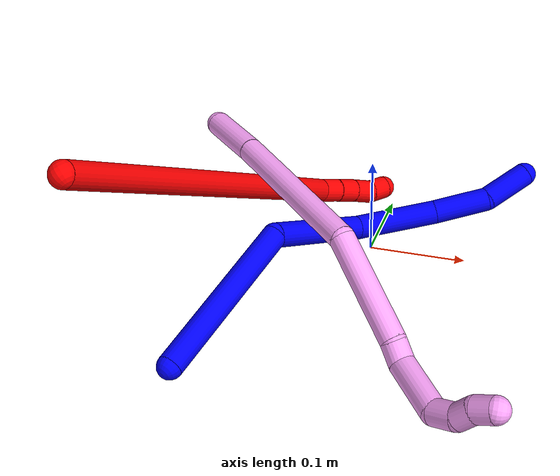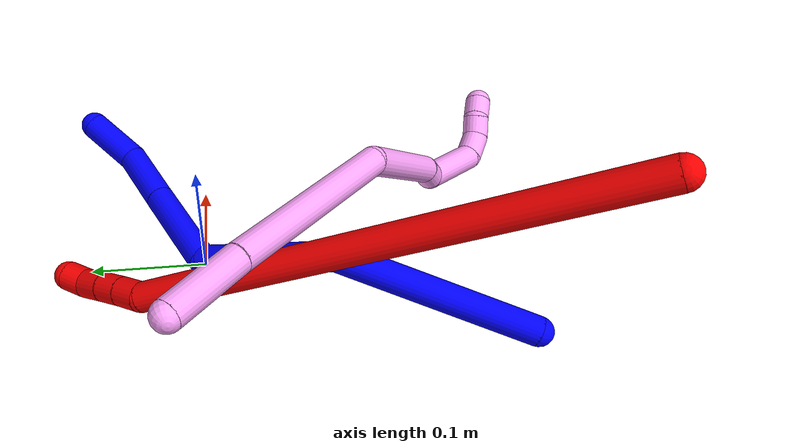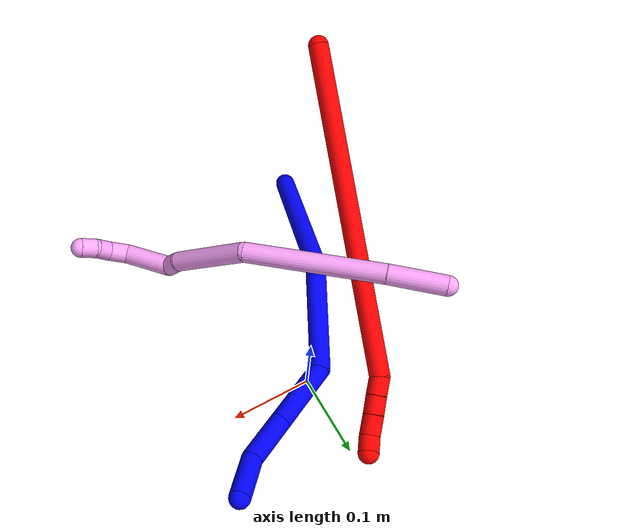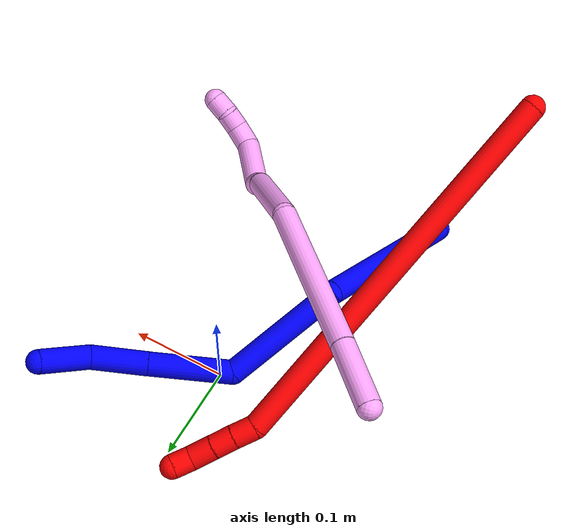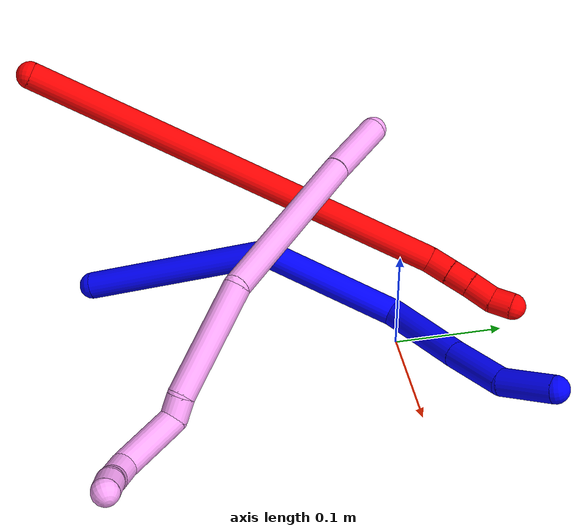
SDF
<sdf version="1.7">
 <world name="default">
  <model name="photoneo_s_sensor">
   <static>1</static>
   <pose>0 0 2 1.57079 1.57079 3.14159</pose>
   <link name="link">
    <inertial><mass>0.1</mass></inertial>
    <sensor name="sensor" type="depth">
     <update_rate>30</update_rate>
     <camera>
      <horizontal_fov>1.22</horizontal_fov>
      <image><width>1920</width><height>1200</height><format>B8G8R8</format></image>
      <clip><near>0.1</near><far>4</far></clip>
      <depth_camera><output>points</output></depth_camera>
     </camera>
     <plugin name="camera_plugin" filename="libgazebo_ros_depth_camera.so">
      <baseline>0.2</baseline>
      <alwaysOn>1</alwaysOn>
      <updateRate>0.0</updateRate>
      <cameraName>camera_ir</cameraName>
      <imageTopicName>/camera/color/image_raw</imageTopicName>
      <cameraInfoTopicName>/camera/color/camera_info</cameraInfoTopicName>
      <depthImageTopicName>/camera/depth/image_raw</depthImageTopicName>
      <depthImageCameraInfoTopicName>/camera/depth/camera_info</depthImageCameraInfoTopicName>
      <pointCloudTopicName>/camera/depth/points</pointCloudTopicName>
      <frameName>fr_optical</frameName>
      <pointCloudCutoff>0.1</pointCloudCutoff>
      <pointCloudCutoffMax>2.0</pointCloudCutoffMax>
      <distortionK1>0</distortionK1>
      <distortionK2>0</distortionK2>
      <distortionK3>0</distortionK3>
      <distortionT1>0</distortionT1>
      <distortionT2>0</distortionT2>
      <CxPrime>0</CxPrime>
      <Cx>0</Cx>
      <Cy>0</Cy>
      <focalLength>0</focalLength>
      <hackBaseline>0</hackBaseline>
     </plugin>
    </sensor>
   </link>
  </model>
  <model name="bin">
   <static>1</static>
   <link name="bottom">
    <collision name="collision-bottom">
     <pose>0 0 -0.01 0 -0 0</pose>
     <geometry><box><size>0.8 0.6 0.02</size></box></geometry>
     <surface>
      <friction><ode><mu>100</mu><mu2>100</mu2></ode></friction>
      <contact><collide_bitmask>65535</collide_bitmask></contact>
     </surface>
    </collision>
   </link>
   <link name="west_wall">
    <collision name="collision-west_wall">
     <pose>-0.41 0 0.1 0 -0 0</pose>
     <geometry><box><size>0.02 0.6 0.2</size></box></geometry>
     <surface>
      <friction><ode><mu>100</mu><mu2>100</mu2></ode></friction>
      <contact><collide_bitmask>65535</collide_bitmask></contact>
     </surface>
    </collision>
   </link>
   <link name="east_wall">
    <collision name="collision-east_wall">
     <pose>0.41 0 0.1 0 -0 0</pose>
     <geometry><box><size>0.02 0.6 0.2</size></box></geometry>
     <surface>
      <friction><ode><mu>100</mu><mu2>100</mu2></ode></friction>
      <contact><collide_bitmask>65535</collide_bitmask></contact>
     </surface>
    </collision>
   </link>
   <link name="south_wall">
    <collision name="collision-south_wall">
     <pose>0 -0.31 0.1 0 -0 0</pose>
     <geometry><box><size>0.8 0.02 0.2</size></box></geometry>
     <surface>
      <friction><ode><mu>100</mu><mu2>100</mu2></ode></friction>
      <contact><collide_bitmask>65535</collide_bitmask></contact>
     </surface>
    </collision>
   </link>
   <link name="north_wall">
    <collision name="collision-north_wall">
     <pose>0 0.31 0.1 0 -0 0</pose>
     <geometry><box><size>0.8 0.02 0.2</size></box></geometry>
     <surface>
      <friction><ode><mu>100</mu><mu2>100</mu2></ode></friction>
      <contact><collide_bitmask>65535</collide_bitmask></contact>
     </surface>
    </collision>
   </link>
  </model>
  <model name="1">
   <static>0</static>
   <link name="1">
    <collision name="collision-cylinder-e_1_1_4">
     <pose>-0.006406 -0.001657 -0.086698 3.12249 -0.073742 -2.63479</pose>
     <geometry><cylinder><radius>0.0125</radius><length>0.1739</length></cylinder></geometry>
     <surface>
      <friction><ode><mu>1.16</mu><mu2>1.16</mu2><slip1>0</slip1><slip2>0</slip2></ode></friction>
      <contact><ode><kp>1e+06</kp><kd>1</kd><max_vel>0</max_vel><min_depth>0.001</min_depth></ode></contact>
     </surface>
    </collision>
    <visual name="visual-cylinder-e_1_1_4">
     <pose>-0.006406 -0.001657 -0.086698 3.12249 -0.073742 -2.63479</pose>
     <geometry><cylinder><radius>0.0125</radius><length>0.1739</length></cylinder></geometry>
     <material><ambient>0 0 1 1</ambient></material>
    </visual>
    <collision name="collision-cylinder-e_2_4_5">
     <pose>0.017738 -0.025774 -0.225757 2.73637 0.492173 1.77051</pose>
     <geometry><cylinder><radius>0.0125</radius><length>0.129299</length></cylinder></geometry>
     <surface>
      <friction><ode><mu>1.16</mu><mu2>1.16</mu2><slip1>0</slip1><slip2>0</slip2></ode></friction>
      <contact><ode><kp>1e+06</kp><kd>1</kd><max_vel>0</max_vel><min_depth>0.001</min_depth></ode></contact>
     </surface>
    </collision>
    <visual name="visual-cylinder-e_2_4_5">
     <pose>0.017738 -0.025774 -0.225757 2.73637 0.492173 1.77051</pose>
     <geometry><cylinder><radius>0.0125</radius><length>0.129299</length></cylinder></geometry>
     <material><ambient>0 0 1 1</ambient></material>
    </visual>
    <collision name="collision-cylinder-e_3_5_6">
     <pose>0.071607 -0.030675 -0.30954 -2.63195 0.574873 -1.697</pose>
     <geometry><cylinder><radius>0.0125</radius><length>0.085779</length></cylinder></geometry>
     <surface>
      <friction><ode><mu>1.16</mu><mu2>1.16</mu2><slip1>0</slip1><slip2>0</slip2></ode></friction>
      <contact><ode><kp>1e+06</kp><kd>1</kd><max_vel>0</max_vel><min_depth>0.001</min_depth></ode></contact>
     </surface>
    </collision>
    <visual name="visual-cylinder-e_3_5_6">
     <pose>0.071607 -0.030675 -0.30954 -2.63195 0.574873 -1.697</pose>
     <geometry><cylinder><radius>0.0125</radius><length>0.085779</length></cylinder></geometry>
     <material><ambient>0 0 1 1</ambient></material>
    </visual>
    <collision name="collision-cylinder-e_4_6_7">
     <pose>0.10968 -0.000365 -0.362795 -2.61311 0.528188 -1.57021</pose>
     <geometry><cylinder><radius>0.0125</radius><length>0.058546</length></cylinder></geometry>
     <surface>
      <friction><ode><mu>1.16</mu><mu2>1.16</mu2><slip1>0</slip1><slip2>0</slip2></ode></friction>
      <contact><ode><kp>1e+06</kp><kd>1</kd><max_vel>0</max_vel><min_depth>0.001</min_depth></ode></contact>
     </surface>
    </collision>
    <visual name="visual-cylinder-e_4_6_7">
     <pose>0.10968 -0.000365 -0.362795 -2.61311 0.528188 -1.57021</pose>
     <geometry><cylinder><radius>0.0125</radius><length>0.058546</length></cylinder></geometry>
     <material><ambient>0 0 1 1</ambient></material>
    </visual>
    <collision name="collision-cylinder-e_5_7_2">
     <pose>0.130077 0.020381 -0.408974 -2.8242 0.216805 -1.19434</pose>
     <geometry><cylinder><radius>0.0125</radius><length>0.052477</length></cylinder></geometry>
     <surface>
      <friction><ode><mu>1.16</mu><mu2>1.16</mu2><slip1>0</slip1><slip2>0</slip2></ode></friction>
      <contact><ode><kp>1e+06</kp><kd>1</kd><max_vel>0</max_vel><min_depth>0.001</min_depth></ode></contact>
     </surface>
    </collision>
    <visual name="visual-cylinder-e_5_7_2">
     <pose>0.130077 0.020381 -0.408974 -2.8242 0.216805 -1.19434</pose>
     <geometry><cylinder><radius>0.0125</radius><length>0.052477</length></cylinder></geometry>
     <material><ambient>0 0 1 1</ambient></material>
    </visual>
    <collision name="collision-sphere-2">
     <pose>0.135721 0.028378 -0.433318 0 -0 0</pose>
     <geometry><sphere><radius>0.0125</radius></sphere></geometry>
     <surface>
      <friction><ode><mu>1.16</mu><mu2>1.16</mu2><slip1>0</slip1><slip2>0</slip2></ode></friction>
      <contact><ode><kp>1e+06</kp><kd>1</kd><max_vel>0</max_vel><min_depth>0.001</min_depth></ode></contact>
     </surface>
    </collision>
    <visual name="visual-sphere-2">
     <pose>0.135721 0.028378 -0.433318 0 -0 0</pose>
     <geometry><sphere><radius>0.0125</radius></sphere></geometry>
     <material><ambient>0 0 1 1</ambient></material>
    </visual>
    <collision name="collision-sphere-7">
     <pose>0.124433 0.012383 -0.38463 0 -0 0</pose>
     <geometry><sphere><radius>0.0125</radius></sphere></geometry>
     <surface>
      <friction><ode><mu>1.16</mu><mu2>1.16</mu2><slip1>0</slip1><slip2>0</slip2></ode></friction>
      <contact><ode><kp>1e+06</kp><kd>1</kd><max_vel>0</max_vel><min_depth>0.001</min_depth></ode></contact>
     </surface>
    </collision>
    <visual name="visual-sphere-7">
     <pose>0.124433 0.012383 -0.38463 0 -0 0</pose>
     <geometry><sphere><radius>0.0125</radius></sphere></geometry>
     <material><ambient>0 0 1 1</ambient></material>
    </visual>
    <collision name="collision-sphere-6">
     <pose>0.094927 -0.013114 -0.340961 0 -0 0</pose>
     <geometry><sphere><radius>0.0125</radius></sphere></geometry>
     <surface>
      <friction><ode><mu>1.16</mu><mu2>1.16</mu2><slip1>0</slip1><slip2>0</slip2></ode></friction>
      <contact><ode><kp>1e+06</kp><kd>1</kd><max_vel>0</max_vel><min_depth>0.001</min_depth></ode></contact>
     </surface>
    </collision>
    <visual name="visual-sphere-6">
     <pose>0.094927 -0.013114 -0.340961 0 -0 0</pose>
     <geometry><sphere><radius>0.0125</radius></sphere></geometry>
     <material><ambient>0 0 1 1</ambient></material>
    </visual>
    <collision name="collision-sphere-5">
     <pose>0.048287 -0.048236 -0.278119 0 -0 0</pose>
     <geometry><sphere><radius>0.0125</radius></sphere></geometry>
     <surface>
      <friction><ode><mu>1.16</mu><mu2>1.16</mu2><slip1>0</slip1><slip2>0</slip2></ode></friction>
      <contact><ode><kp>1e+06</kp><kd>1</kd><max_vel>0</max_vel><min_depth>0.001</min_depth></ode></contact>
     </surface>
    </collision>
    <visual name="visual-sphere-5">
     <pose>0.048287 -0.048236 -0.278119 0 -0 0</pose>
     <geometry><sphere><radius>0.0125</radius></sphere></geometry>
     <material><ambient>0 0 1 1</ambient></material>
    </visual>
    <collision name="collision-sphere-1">
     <geometry><sphere><radius>0.0125</radius></sphere></geometry>
     <surface>
      <friction><ode><mu>1.16</mu><mu2>1.16</mu2><slip1>0</slip1><slip2>0</slip2></ode></friction>
      <contact><ode><kp>1e+06</kp><kd>1</kd><max_vel>0</max_vel><min_depth>0.001</min_depth></ode></contact>
     </surface>
    </collision>
    <visual name="visual-sphere-1">
     <geometry><sphere><radius>0.0125</radius></sphere></geometry>
     <material><ambient>0 0 1 1</ambient></material>
    </visual>
    <collision name="collision-sphere-4">
     <pose>-0.012812 -0.003313 -0.173395 0 -0 0</pose>
     <geometry><sphere><radius>0.0125</radius></sphere></geometry>
     <surface>
      <friction><ode><mu>1.16</mu><mu2>1.16</mu2><slip1>0</slip1><slip2>0</slip2></ode></friction>
      <contact><ode><kp>1e+06</kp><kd>1</kd><max_vel>0</max_vel><min_depth>0.001</min_depth></ode></contact>
     </surface>
    </collision>
    <visual name="visual-sphere-4">
     <pose>-0.012812 -0.003313 -0.173395 0 -0 0</pose>
     <geometry><sphere><radius>0.0125</radius></sphere></geometry>
     <material><ambient>0 0 1 1</ambient></material>
    </visual>
    <inertial>
     <pose>0.041138 -0.010408 -0.227041 0 -0 0</pose>
     <mass>0.5</mass>
     <inertia>
      <ixx>-0.000542</ixx>
      <ixy>0</ixy>
      <ixz>0</ixz>
      <iyy>0.00035</iyy>
      <iyz>0</iyz>
      <izz>-9.4e-05</izz>
     </inertia>
    </inertial>
   </link>
   <pose>-0.118692 -0.266383 0.011961 1.94226 0.731548 -0.105381</pose>
  </model>
  <model name="2">
   <static>0</static>
   <link name="2">
    <collision name="collision-cylinder-e_1_1_4">
     <pose>-0.008115 0.202615 -0.026155 -1.69918 -0.039702 0.045155</pose>
     <geometry><cylinder><radius>0.0125</radius><length>0.408915</length></cylinder></geometry>
     <surface>
      <friction><ode><mu>1.16</mu><mu2>1.16</mu2><slip1>0</slip1><slip2>0</slip2></ode></friction>
      <contact><ode><kp>1e+06</kp><kd>1</kd><max_vel>0</max_vel><min_depth>0.001</min_depth></ode></contact>
     </surface>
    </collision>
    <visual name="visual-cylinder-e_1_1_4">
     <pose>-0.008115 0.202615 -0.026155 -1.69918 -0.039702 0.045155</pose>
     <geometry><cylinder><radius>0.0125</radius><length>0.408915</length></cylinder></geometry>
     <material><ambient>1 0 0 1</ambient></material>
    </visual>
    <collision name="collision-cylinder-e_2_4_5">
     <pose>-0.01247 0.415657 -0.056005 -1.91132 0.327689 -0.459683</pose>
     <geometry><cylinder><radius>0.0125</radius><length>0.023366</length></cylinder></geometry>
     <surface>
      <friction><ode><mu>1.16</mu><mu2>1.16</mu2><slip1>0</slip1><slip2>0</slip2></ode></friction>
      <contact><ode><kp>1e+06</kp><kd>1</kd><max_vel>0</max_vel><min_depth>0.001</min_depth></ode></contact>
     </surface>
    </collision>
    <visual name="visual-cylinder-e_2_4_5">
     <pose>-0.01247 0.415657 -0.056005 -1.91132 0.327689 -0.459683</pose>
     <geometry><cylinder><radius>0.0125</radius><length>0.023366</length></cylinder></geometry>
     <material><ambient>1 0 0 1</ambient></material>
    </visual>
    <collision name="collision-cylinder-e_3_5_6">
     <pose>-0.005477 0.436168 -0.063164 -1.90171 0.294413 -0.409628</pose>
     <geometry><cylinder><radius>0.0125</radius><length>0.022285</length></cylinder></geometry>
     <surface>
      <friction><ode><mu>1.16</mu><mu2>1.16</mu2><slip1>0</slip1><slip2>0</slip2></ode></friction>
      <contact><ode><kp>1e+06</kp><kd>1</kd><max_vel>0</max_vel><min_depth>0.001</min_depth></ode></contact>
     </surface>
    </collision>
    <visual name="visual-cylinder-e_3_5_6">
     <pose>-0.005477 0.436168 -0.063164 -1.90171 0.294413 -0.409628</pose>
     <geometry><cylinder><radius>0.0125</radius><length>0.022285</length></cylinder></geometry>
     <material><ambient>1 0 0 1</ambient></material>
    </visual>
    <collision name="collision-cylinder-e_4_6_7">
     <pose>0.001099 0.457506 -0.070998 -1.94121 0.270066 -0.391911</pose>
     <geometry><cylinder><radius>0.0125</radius><length>0.025051</length></cylinder></geometry>
     <surface>
      <friction><ode><mu>1.16</mu><mu2>1.16</mu2><slip1>0</slip1><slip2>0</slip2></ode></friction>
      <contact><ode><kp>1e+06</kp><kd>1</kd><max_vel>0</max_vel><min_depth>0.001</min_depth></ode></contact>
     </surface>
    </collision>
    <visual name="visual-cylinder-e_4_6_7">
     <pose>0.001099 0.457506 -0.070998 -1.94121 0.270066 -0.391911</pose>
     <geometry><cylinder><radius>0.0125</radius><length>0.025051</length></cylinder></geometry>
     <material><ambient>1 0 0 1</ambient></material>
    </visual>
    <collision name="collision-cylinder-e_5_7_2">
     <pose>0.009047 0.477794 -0.076368 -1.68101 0.469054 -0.521496</pose>
     <geometry><cylinder><radius>0.0125</radius><length>0.020381</length></cylinder></geometry>
     <surface>
      <friction><ode><mu>1.16</mu><mu2>1.16</mu2><slip1>0</slip1><slip2>0</slip2></ode></friction>
      <contact><ode><kp>1e+06</kp><kd>1</kd><max_vel>0</max_vel><min_depth>0.001</min_depth></ode></contact>
     </surface>
    </collision>
    <visual name="visual-cylinder-e_5_7_2">
     <pose>0.009047 0.477794 -0.076368 -1.68101 0.469054 -0.521496</pose>
     <geometry><cylinder><radius>0.0125</radius><length>0.020381</length></cylinder></geometry>
     <material><ambient>1 0 0 1</ambient></material>
    </visual>
    <collision name="collision-sphere-2">
     <pose>0.013654 0.486829 -0.077368 0 -0 0</pose>
     <geometry><sphere><radius>0.0125</radius></sphere></geometry>
     <surface>
      <friction><ode><mu>1.16</mu><mu2>1.16</mu2><slip1>0</slip1><slip2>0</slip2></ode></friction>
      <contact><ode><kp>1e+06</kp><kd>1</kd><max_vel>0</max_vel><min_depth>0.001</min_depth></ode></contact>
     </surface>
    </collision>
    <visual name="visual-sphere-2">
     <pose>0.013654 0.486829 -0.077368 0 -0 0</pose>
     <geometry><sphere><radius>0.0125</radius></sphere></geometry>
     <material><ambient>1 0 0 1</ambient></material>
    </visual>
    <collision name="collision-sphere-7">
     <pose>0.00444 0.468759 -0.075368 0 -0 0</pose>
     <geometry><sphere><radius>0.0125</radius></sphere></geometry>
     <surface>
      <friction><ode><mu>1.16</mu><mu2>1.16</mu2><slip1>0</slip1><slip2>0</slip2></ode></friction>
      <contact><ode><kp>1e+06</kp><kd>1</kd><max_vel>0</max_vel><min_depth>0.001</min_depth></ode></contact>
     </surface>
    </collision>
    <visual name="visual-sphere-7">
     <pose>0.00444 0.468759 -0.075368 0 -0 0</pose>
     <geometry><sphere><radius>0.0125</radius></sphere></geometry>
     <material><ambient>1 0 0 1</ambient></material>
    </visual>
    <collision name="collision-sphere-6">
     <pose>-0.002243 0.446253 -0.066628 0 -0 0</pose>
     <geometry><sphere><radius>0.0125</radius></sphere></geometry>
     <surface>
      <friction><ode><mu>1.16</mu><mu2>1.16</mu2><slip1>0</slip1><slip2>0</slip2></ode></friction>
      <contact><ode><kp>1e+06</kp><kd>1</kd><max_vel>0</max_vel><min_depth>0.001</min_depth></ode></contact>
     </surface>
    </collision>
    <visual name="visual-sphere-6">
     <pose>-0.002243 0.446253 -0.066628 0 -0 0</pose>
     <geometry><sphere><radius>0.0125</radius></sphere></geometry>
     <material><ambient>1 0 0 1</ambient></material>
    </visual>
    <collision name="collision-sphere-5">
     <pose>-0.00871 0.426084 -0.059699 0 -0 0</pose>
     <geometry><sphere><radius>0.0125</radius></sphere></geometry>
     <surface>
      <friction><ode><mu>1.16</mu><mu2>1.16</mu2><slip1>0</slip1><slip2>0</slip2></ode></friction>
      <contact><ode><kp>1e+06</kp><kd>1</kd><max_vel>0</max_vel><min_depth>0.001</min_depth></ode></contact>
     </surface>
    </collision>
    <visual name="visual-sphere-5">
     <pose>-0.00871 0.426084 -0.059699 0 -0 0</pose>
     <geometry><sphere><radius>0.0125</radius></sphere></geometry>
     <material><ambient>1 0 0 1</ambient></material>
    </visual>
    <collision name="collision-sphere-1">
     <geometry><sphere><radius>0.0125</radius></sphere></geometry>
     <surface>
      <friction><ode><mu>1.16</mu><mu2>1.16</mu2><slip1>0</slip1><slip2>0</slip2></ode></friction>
      <contact><ode><kp>1e+06</kp><kd>1</kd><max_vel>0</max_vel><min_depth>0.001</min_depth></ode></contact>
     </surface>
    </collision>
    <visual name="visual-sphere-1">
     <geometry><sphere><radius>0.0125</radius></sphere></geometry>
     <material><ambient>1 0 0 1</ambient></material>
    </visual>
    <collision name="collision-sphere-4">
     <pose>-0.016231 0.405231 -0.052311 0 -0 0</pose>
     <geometry><sphere><radius>0.0125</radius></sphere></geometry>
     <surface>
      <friction><ode><mu>1.16</mu><mu2>1.16</mu2><slip1>0</slip1><slip2>0</slip2></ode></friction>
      <contact><ode><kp>1e+06</kp><kd>1</kd><max_vel>0</max_vel><min_depth>0.001</min_depth></ode></contact>
     </surface>
    </collision>
    <visual name="visual-sphere-4">
     <pose>-0.016231 0.405231 -0.052311 0 -0 0</pose>
     <geometry><sphere><radius>0.0125</radius></sphere></geometry>
     <material><ambient>1 0 0 1</ambient></material>
    </visual>
    <inertial>
     <pose>-0.00704 0.246969 -0.033493 0 -0 0</pose>
     <mass>0.5</mass>
     <inertia>
      <ixx>0.005966</ixx>
      <ixy>0</ixy>
      <ixz>0</ixz>
      <iyy>-0.000429</iyy>
      <iyz>0</iyz>
      <izz>-0.005451</izz>
     </inertia>
    </inertial>
   </link>
   <pose>-0.180203 -0.30241 0.214158 -0.475772 -0.757138 0.110261</pose>
  </model>
  <model name="4">
   <static>0</static>
   <link name="4">
    <collision name="collision-cylinder-e_1_1_4">
     <pose>0.022302 -0.014067 -0.023331 2.59901 0.685976 1.8181</pose>
     <geometry><cylinder><radius>0.0125</radius><length>0.070416</length></cylinder></geometry>
     <surface>
      <friction><ode><mu>1.16</mu><mu2>1.16</mu2><slip1>0</slip1><slip2>0</slip2></ode></friction>
      <contact><ode><kp>1e+06</kp><kd>1</kd><max_vel>0</max_vel><min_depth>0.001</min_depth></ode></contact>
     </surface>
    </collision>
    <visual name="visual-cylinder-e_1_1_4">
     <pose>0.022302 -0.014067 -0.023331 2.59901 0.685976 1.8181</pose>
     <geometry><cylinder><radius>0.0125</radius><length>0.070416</length></cylinder></geometry>
     <material><ambient>1 0.65098 0.996078 1</ambient></material>
    </visual>
    <collision name="collision-cylinder-e_2_4_5">
     <pose>0.095605 -0.06739 -0.104704 2.54694 0.629179 1.63088</pose>
     <geometry><cylinder><radius>0.0125</radius><length>0.173331</length></cylinder></geometry>
     <surface>
      <friction><ode><mu>1.16</mu><mu2>1.16</mu2><slip1>0</slip1><slip2>0</slip2></ode></friction>
      <contact><ode><kp>1e+06</kp><kd>1</kd><max_vel>0</max_vel><min_depth>0.001</min_depth></ode></contact>
     </surface>
    </collision>
    <visual name="visual-cylinder-e_2_4_5">
     <pose>0.095605 -0.06739 -0.104704 2.54694 0.629179 1.63088</pose>
     <geometry><cylinder><radius>0.0125</radius><length>0.173331</length></cylinder></geometry>
     <material><ambient>1 0.65098 0.996078 1</ambient></material>
    </visual>
    <collision name="collision-cylinder-e_3_5_6">
     <pose>0.157883 -0.148048 -0.194835 2.23012 0.21206 0.427634</pose>
     <geometry><cylinder><radius>0.0125</radius><length>0.107165</length></cylinder></geometry>
     <surface>
      <friction><ode><mu>1.16</mu><mu2>1.16</mu2><slip1>0</slip1><slip2>0</slip2></ode></friction>
      <contact><ode><kp>1e+06</kp><kd>1</kd><max_vel>0</max_vel><min_depth>0.001</min_depth></ode></contact>
     </surface>
    </collision>
    <visual name="visual-cylinder-e_3_5_6">
     <pose>0.157883 -0.148048 -0.194835 2.23012 0.21206 0.427634</pose>
     <geometry><cylinder><radius>0.0125</radius><length>0.107165</length></cylinder></geometry>
     <material><ambient>1 0.65098 0.996078 1</ambient></material>
    </visual>
    <collision name="collision-cylinder-e_4_6_7">
     <pose>0.168614 -0.198442 -0.232579 2.13234 -0.051485 -0.093168</pose>
     <geometry><cylinder><radius>0.0125</radius><length>0.021272</length></cylinder></geometry>
     <surface>
      <friction><ode><mu>1.16</mu><mu2>1.16</mu2><slip1>0</slip1><slip2>0</slip2></ode></friction>
      <contact><ode><kp>1e+06</kp><kd>1</kd><max_vel>0</max_vel><min_depth>0.001</min_depth></ode></contact>
     </surface>
    </collision>
    <visual name="visual-cylinder-e_4_6_7">
     <pose>0.168614 -0.198442 -0.232579 2.13234 -0.051485 -0.093168</pose>
     <geometry><cylinder><radius>0.0125</radius><length>0.021272</length></cylinder></geometry>
     <material><ambient>1 0.65098 0.996078 1</ambient></material>
    </visual>
    <collision name="collision-cylinder-e_5_7_8">
     <pose>0.187696 -0.224321 -0.255217 2.35895 0.686584 1.42779</pose>
     <geometry><cylinder><radius>0.0125</radius><length>0.061932</length></cylinder></geometry>
     <surface>
      <friction><ode><mu>1.16</mu><mu2>1.16</mu2><slip1>0</slip1><slip2>0</slip2></ode></friction>
      <contact><ode><kp>1e+06</kp><kd>1</kd><max_vel>0</max_vel><min_depth>0.001</min_depth></ode></contact>
     </surface>
    </collision>
    <visual name="visual-cylinder-e_5_7_8">
     <pose>0.187696 -0.224321 -0.255217 2.35895 0.686584 1.42779</pose>
     <geometry><cylinder><radius>0.0125</radius><length>0.061932</length></cylinder></geometry>
     <material><ambient>1 0.65098 0.996078 1</ambient></material>
    </visual>
    <collision name="collision-cylinder-e_6_8_9">
     <pose>0.215929 -0.241099 -0.281737 -3.13002 0.73387 -3.11149</pose>
     <geometry><cylinder><radius>0.0125</radius><length>0.025693</length></cylinder></geometry>
     <surface>
      <friction><ode><mu>1.16</mu><mu2>1.16</mu2><slip1>0</slip1><slip2>0</slip2></ode></friction>
      <contact><ode><kp>1e+06</kp><kd>1</kd><max_vel>0</max_vel><min_depth>0.001</min_depth></ode></contact>
     </surface>
    </collision>
    <visual name="visual-cylinder-e_6_8_9">
     <pose>0.215929 -0.241099 -0.281737 -3.13002 0.73387 -3.11149</pose>
     <geometry><cylinder><radius>0.0125</radius><length>0.025693</length></cylinder></geometry>
     <material><ambient>1 0.65098 0.996078 1</ambient></material>
    </visual>
    <collision name="collision-cylinder-e_7_9_10">
     <pose>0.230816 -0.236076 -0.297371 -2.46319 0.676403 -1.56761</pose>
     <geometry><cylinder><radius>0.0125</radius><length>0.020075</length></cylinder></geometry>
     <surface>
      <friction><ode><mu>1.16</mu><mu2>1.16</mu2><slip1>0</slip1><slip2>0</slip2></ode></friction>
      <contact><ode><kp>1e+06</kp><kd>1</kd><max_vel>0</max_vel><min_depth>0.001</min_depth></ode></contact>
     </surface>
    </collision>
    <visual name="visual-cylinder-e_7_9_10">
     <pose>0.230816 -0.236076 -0.297371 -2.46319 0.676403 -1.56761</pose>
     <geometry><cylinder><radius>0.0125</radius><length>0.020075</length></cylinder></geometry>
     <material><ambient>1 0.65098 0.996078 1</ambient></material>
    </visual>
    <collision name="collision-cylinder-e_8_10_2">
     <pose>0.242838 -0.229468 -0.31155 -2.93484 0.607111 -2.50192</pose>
     <geometry><cylinder><radius>0.0125</radius><length>0.020115</length></cylinder></geometry>
     <surface>
      <friction><ode><mu>1.16</mu><mu2>1.16</mu2><slip1>0</slip1><slip2>0</slip2></ode></friction>
      <contact><ode><kp>1e+06</kp><kd>1</kd><max_vel>0</max_vel><min_depth>0.001</min_depth></ode></contact>
     </surface>
    </collision>
    <visual name="visual-cylinder-e_8_10_2">
     <pose>0.242838 -0.229468 -0.31155 -2.93484 0.607111 -2.50192</pose>
     <geometry><cylinder><radius>0.0125</radius><length>0.020115</length></cylinder></geometry>
     <material><ambient>1 0.65098 0.996078 1</ambient></material>
    </visual>
    <collision name="collision-sphere-2">
     <pose>0.248576 -0.227773 -0.319634 0 -0 0</pose>
     <geometry><sphere><radius>0.0125</radius></sphere></geometry>
     <surface>
      <friction><ode><mu>1.16</mu><mu2>1.16</mu2><slip1>0</slip1><slip2>0</slip2></ode></friction>
      <contact><ode><kp>1e+06</kp><kd>1</kd><max_vel>0</max_vel><min_depth>0.001</min_depth></ode></contact>
     </surface>
    </collision>
    <visual name="visual-sphere-2">
     <pose>0.248576 -0.227773 -0.319634 0 -0 0</pose>
     <geometry><sphere><radius>0.0125</radius></sphere></geometry>
     <material><ambient>1 0.65098 0.996078 1</ambient></material>
    </visual>
    <collision name="collision-sphere-10">
     <pose>0.2371 -0.231164 -0.303465 0 -0 0</pose>
     <geometry><sphere><radius>0.0125</radius></sphere></geometry>
     <surface>
      <friction><ode><mu>1.16</mu><mu2>1.16</mu2><slip1>0</slip1><slip2>0</slip2></ode></friction>
      <contact><ode><kp>1e+06</kp><kd>1</kd><max_vel>0</max_vel><min_depth>0.001</min_depth></ode></contact>
     </surface>
    </collision>
    <visual name="visual-sphere-10">
     <pose>0.2371 -0.231164 -0.303465 0 -0 0</pose>
     <geometry><sphere><radius>0.0125</radius></sphere></geometry>
     <material><ambient>1 0.65098 0.996078 1</ambient></material>
    </visual>
    <collision name="collision-sphere-9">
     <pose>0.224533 -0.240988 -0.291277 0 -0 0</pose>
     <geometry><sphere><radius>0.0125</radius></sphere></geometry>
     <surface>
      <friction><ode><mu>1.16</mu><mu2>1.16</mu2><slip1>0</slip1><slip2>0</slip2></ode></friction>
      <contact><ode><kp>1e+06</kp><kd>1</kd><max_vel>0</max_vel><min_depth>0.001</min_depth></ode></contact>
     </surface>
    </collision>
    <visual name="visual-sphere-9">
     <pose>0.224533 -0.240988 -0.291277 0 -0 0</pose>
     <geometry><sphere><radius>0.0125</radius></sphere></geometry>
     <material><ambient>1 0.65098 0.996078 1</ambient></material>
    </visual>
    <collision name="collision-sphere-4">
     <pose>0.044604 -0.028135 -0.046662 0 -0 0</pose>
     <geometry><sphere><radius>0.0125</radius></sphere></geometry>
     <surface>
      <friction><ode><mu>1.16</mu><mu2>1.16</mu2><slip1>0</slip1><slip2>0</slip2></ode></friction>
      <contact><ode><kp>1e+06</kp><kd>1</kd><max_vel>0</max_vel><min_depth>0.001</min_depth></ode></contact>
     </surface>
    </collision>
    <visual name="visual-sphere-4">
     <pose>0.044604 -0.028135 -0.046662 0 -0 0</pose>
     <geometry><sphere><radius>0.0125</radius></sphere></geometry>
     <material><ambient>1 0.65098 0.996078 1</ambient></material>
    </visual>
    <collision name="collision-sphere-1">
     <geometry><sphere><radius>0.0125</radius></sphere></geometry>
     <surface>
      <friction><ode><mu>1.16</mu><mu2>1.16</mu2><slip1>0</slip1><slip2>0</slip2></ode></friction>
      <contact><ode><kp>1e+06</kp><kd>1</kd><max_vel>0</max_vel><min_depth>0.001</min_depth></ode></contact>
     </surface>
    </collision>
    <visual name="visual-sphere-1">
     <geometry><sphere><radius>0.0125</radius></sphere></geometry>
     <material><ambient>1 0.65098 0.996078 1</ambient></material>
    </visual>
    <collision name="collision-sphere-8">
     <pose>0.207325 -0.241209 -0.272198 0 -0 0</pose>
     <geometry><sphere><radius>0.0125</radius></sphere></geometry>
     <surface>
      <friction><ode><mu>1.16</mu><mu2>1.16</mu2><slip1>0</slip1><slip2>0</slip2></ode></friction>
      <contact><ode><kp>1e+06</kp><kd>1</kd><max_vel>0</max_vel><min_depth>0.001</min_depth></ode></contact>
     </surface>
    </collision>
    <visual name="visual-sphere-8">
     <pose>0.207325 -0.241209 -0.272198 0 -0 0</pose>
     <geometry><sphere><radius>0.0125</radius></sphere></geometry>
     <material><ambient>1 0.65098 0.996078 1</ambient></material>
    </visual>
    <collision name="collision-sphere-5">
     <pose>0.146606 -0.106645 -0.162746 0 -0 0</pose>
     <geometry><sphere><radius>0.0125</radius></sphere></geometry>
     <surface>
      <friction><ode><mu>1.16</mu><mu2>1.16</mu2><slip1>0</slip1><slip2>0</slip2></ode></friction>
      <contact><ode><kp>1e+06</kp><kd>1</kd><max_vel>0</max_vel><min_depth>0.001</min_depth></ode></contact>
     </surface>
    </collision>
    <visual name="visual-sphere-5">
     <pose>0.146606 -0.106645 -0.162746 0 -0 0</pose>
     <geometry><sphere><radius>0.0125</radius></sphere></geometry>
     <material><ambient>1 0.65098 0.996078 1</ambient></material>
    </visual>
    <collision name="collision-sphere-6">
     <pose>0.169161 -0.189451 -0.226923 0 -0 0</pose>
     <geometry><sphere><radius>0.0125</radius></sphere></geometry>
     <surface>
      <friction><ode><mu>1.16</mu><mu2>1.16</mu2><slip1>0</slip1><slip2>0</slip2></ode></friction>
      <contact><ode><kp>1e+06</kp><kd>1</kd><max_vel>0</max_vel><min_depth>0.001</min_depth></ode></contact>
     </surface>
    </collision>
    <visual name="visual-sphere-6">
     <pose>0.169161 -0.189451 -0.226923 0 -0 0</pose>
     <geometry><sphere><radius>0.0125</radius></sphere></geometry>
     <material><ambient>1 0.65098 0.996078 1</ambient></material>
    </visual>
    <collision name="collision-sphere-7">
     <pose>0.168066 -0.207433 -0.238235 0 -0 0</pose>
     <geometry><sphere><radius>0.0125</radius></sphere></geometry>
     <surface>
      <friction><ode><mu>1.16</mu><mu2>1.16</mu2><slip1>0</slip1><slip2>0</slip2></ode></friction>
      <contact><ode><kp>1e+06</kp><kd>1</kd><max_vel>0</max_vel><min_depth>0.001</min_depth></ode></contact>
     </surface>
    </collision>
    <visual name="visual-sphere-7">
     <pose>0.168066 -0.207433 -0.238235 0 -0 0</pose>
     <geometry><sphere><radius>0.0125</radius></sphere></geometry>
     <material><ambient>1 0.65098 0.996078 1</ambient></material>
    </visual>
    <inertial>
     <pose>0.130677 -0.124401 -0.1618 0 -0 0</pose>
     <mass>0.5</mass>
     <inertia>
      <ixx>0.000526</ixx>
      <ixy>0</ixy>
      <ixz>0</ixz>
      <iyy>0.000563</iyy>
      <iyz>0</iyz>
      <izz>-3.7e-05</izz>
     </inertia>
    </inertial>
   </link>
   <pose>-0.172599 0.015089 0.117021 1.41637 -0.629028 -1.37222</pose>
  </model>
 </world>
</sdf>
